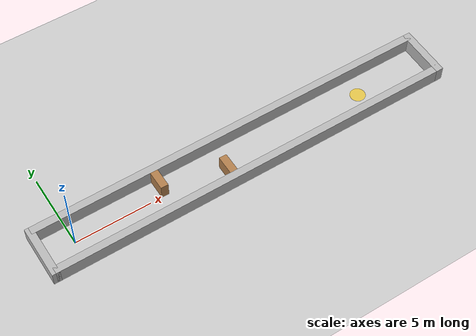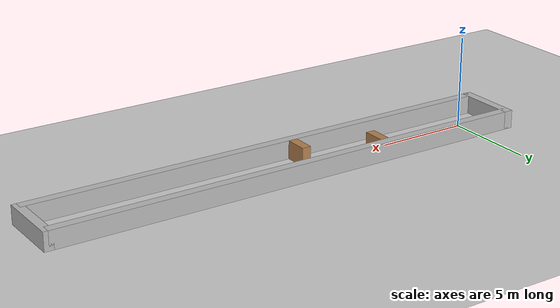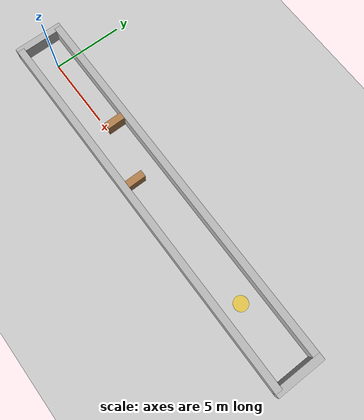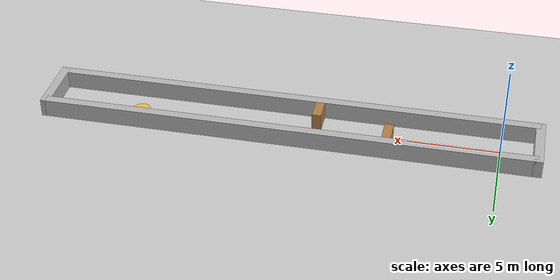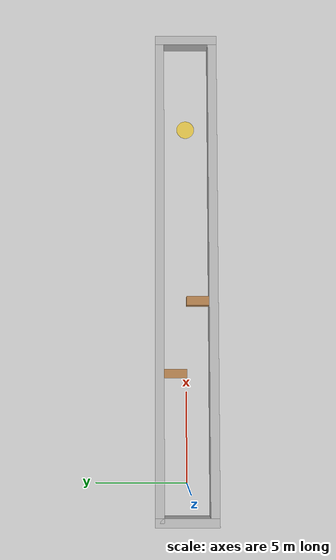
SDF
<?xml version="1.0" ?>
<sdf version="1.6">
  <world name="default">
    <include><uri>model://sun</uri></include>
    <include><uri>model://ground_plane</uri></include>

    <model name="wall_left">
      <static>true</static><pose>11.5 1.5 0.5 0 0 0</pose>
      <link name="link">
        <collision name="collision"><geometry><box><size>27.0 0.5 1.0</size></box></geometry></collision>
        <visual name="visual"><geometry><box><size>27.0 0.5 1.0</size></box></geometry>
          <material><script><uri>file://media/materials/scripts/gazebo.material</uri><name>Gazebo/Brick</name></script></material>
        </visual>
      </link>
    </model>

    <model name="wall_right">
      <static>true</static><pose>11.5 -1.5 0.5 0 0 0</pose>
      <link name="link">
        <collision name="collision"><geometry><box><size>27.0 0.5 1.0</size></box></geometry></collision>
        <visual name="visual"><geometry><box><size>27.0 0.5 1.0</size></box></geometry>
          <material><script><uri>file://media/materials/scripts/gazebo.material</uri><name>Gazebo/Brick</name></script></material>
        </visual>
      </link>
    </model>

    <model name="wall_start">
      <static>true</static><pose>-2.0 0.0 0.5 0 0 0</pose>
      <link name="link">
        <collision name="collision"><geometry><box><size>0.5 3.5 1.0</size></box></geometry></collision>
        <visual name="visual"><geometry><box><size>0.5 3.5 1.0</size></box></geometry>
          <material><script><uri>file://media/materials/scripts/gazebo.material</uri><name>Gazebo/Brick</name></script></material>
        </visual>
      </link>
    </model>
    <model name="wall_end">
      <static>true</static><pose>25.0 0.0 0.5 0 0 0</pose>
      <link name="link">
        <collision name="collision"><geometry><box><size>0.5 3.5 1.0</size></box></geometry></collision>
        <visual name="visual"><geometry><box><size>0.5 3.5 1.0</size></box></geometry>
          <material><script><uri>file://media/materials/scripts/gazebo.material</uri><name>Gazebo/Brick</name></script></material>
        </visual>
      </link>
    </model>

    <model name="obs1_left">
      <static>true</static><pose>6.0 0.625 0.5 0 0 0</pose>
      <link name="link">
        <collision name="collision"><geometry><box><size>0.5 1.25 1.0</size></box></geometry></collision>
        <visual name="visual"><geometry><box><size>0.5 1.25 1.0</size></box></geometry>
          <material><script><uri>file://media/materials/scripts/gazebo.material</uri><name>Gazebo/Wood</name></script></material>
        </visual>
      </link>
    </model>

    <model name="obs2_right">
      <static>true</static><pose>10.0 -0.625 0.5 0 0 0</pose>
      <link name="link">
        <collision name="collision"><geometry><box><size>0.5 1.25 1.0</size></box></geometry></collision>
        <visual name="visual"><geometry><box><size>0.5 1.25 1.0</size></box></geometry>
          <material><script><uri>file://media/materials/scripts/gazebo.material</uri><name>Gazebo/Wood</name></script></material>
        </visual>
      </link>
    </model>

    <model name="target_marker">
      <static>true</static><pose>20.0 0.0 0.005 0 0 0</pose>
      <link name="link">
        <visual name="visual">
          <geometry><cylinder><radius>0.5</radius><length>0.01</length></cylinder></geometry>
          <material>
            <ambient>1.0 0.8 0.0 0.6</ambient><diffuse>1.0 0.8 0.0 0.6</diffuse>
            <specular>0.1 0.1 0.1 1.0</specular><emissive>0.3 0.2 0.0 1.0</emissive>
          </material>
        </visual>
      </link>
    </model>
  </world>
</sdf>
